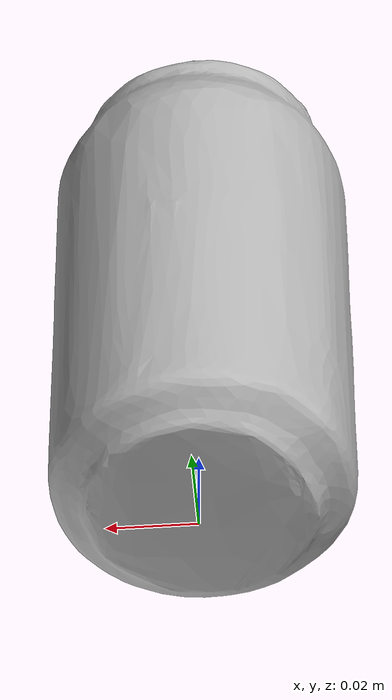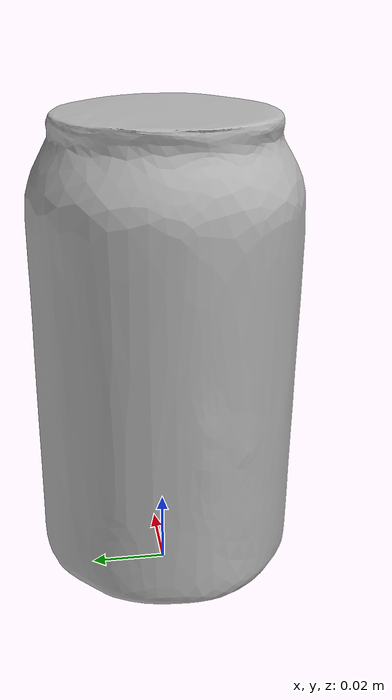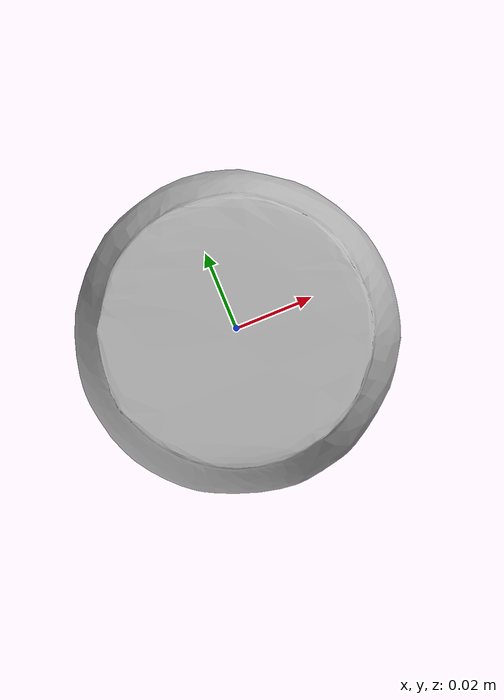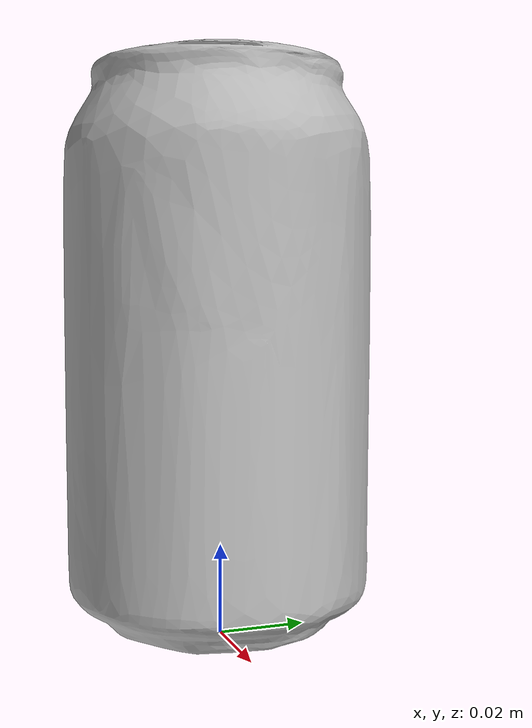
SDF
<?xml version="1.0" ?>
<sdf version="1.4">
  <model name="coke_can">
    <link name="link">
      <inertial>
        <pose>0 0 0.06 0 0 0</pose>
        <mass>0.014</mass>
        <inertia>
          <ixx>0.00001995</ixx>
          <ixy>0</ixy>
          <ixz>0</ixz>
          <iyy>0.00001995</iyy>
          <iyz>0</iyz>
          <izz>0.0000063</izz>
        </inertia>
      </inertial>
      <collision name="collision">
        <pose>0.003937 0.0047244 -0.18 0 0 0</pose>
        <geometry>
          <mesh>
            <uri>model://coke/coke_can.dae</uri>
          </mesh>
        </geometry>
        <surface>
          <friction>
            <ode>
              <mu>30.0</mu>
              <mu2>30.0</mu2>
            </ode>
          </friction>
          <contact>
            <ode>
              <kp>1000.0</kp>
              <kd>1.0</kd>
              <min_depth>0.001</min_depth>
              <max_vel>0.1</max_vel>
            </ode>
          </contact>
        </surface>
      </collision>
      <visual name="visual">
        <pose>0.003937 0.0047244 -0.18 0 0 0</pose>
        <geometry>
          <mesh>
            <uri>model://coke/coke_can.dae</uri>
          </mesh>
        </geometry>
      </visual>
      <sensor name='my_contact' type='contact'>
        <contact>
          <collision>collision</collision>
        </contact>
      </sensor>
    </link>
  </model>
</sdf>
